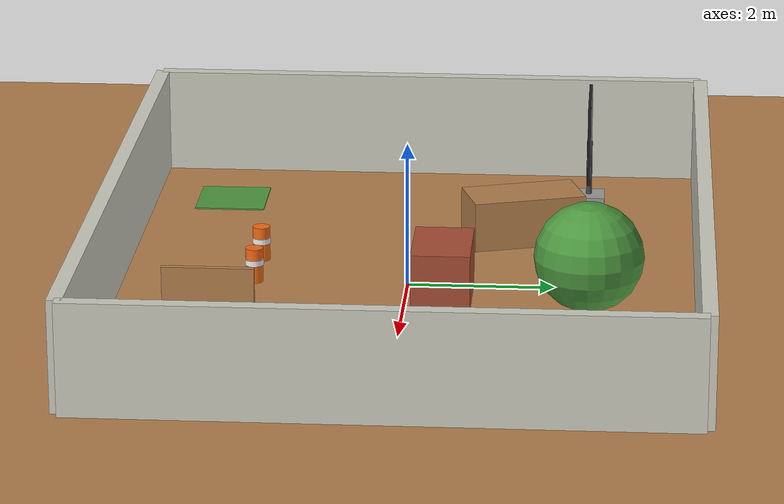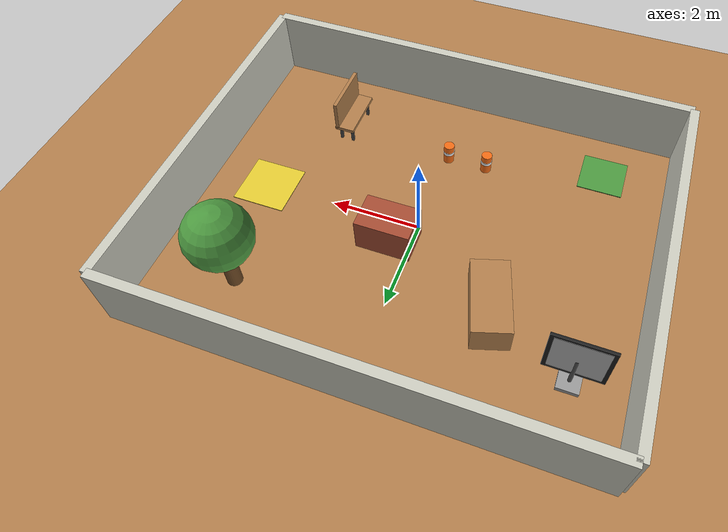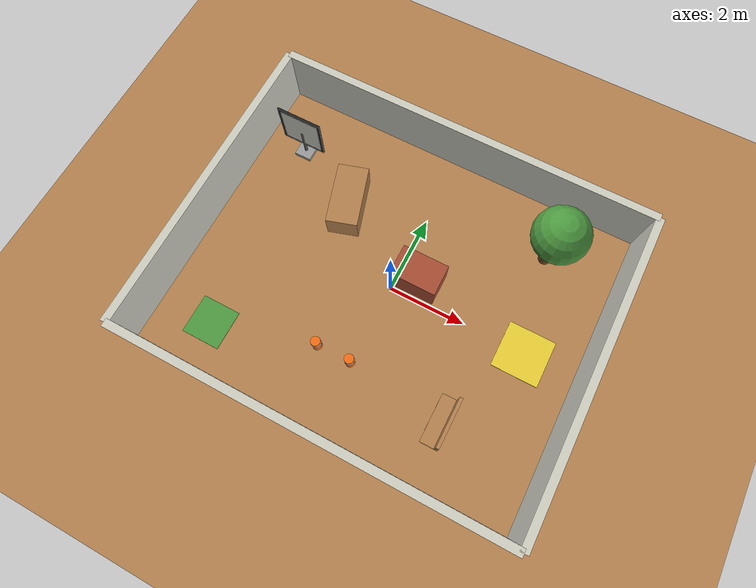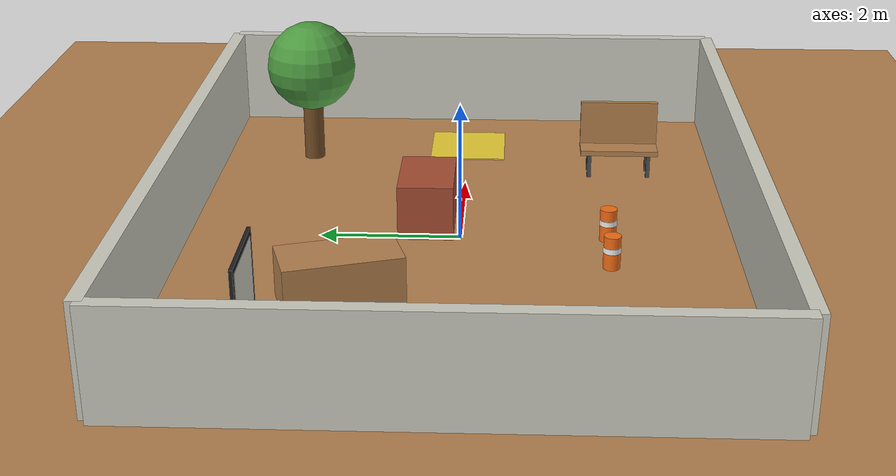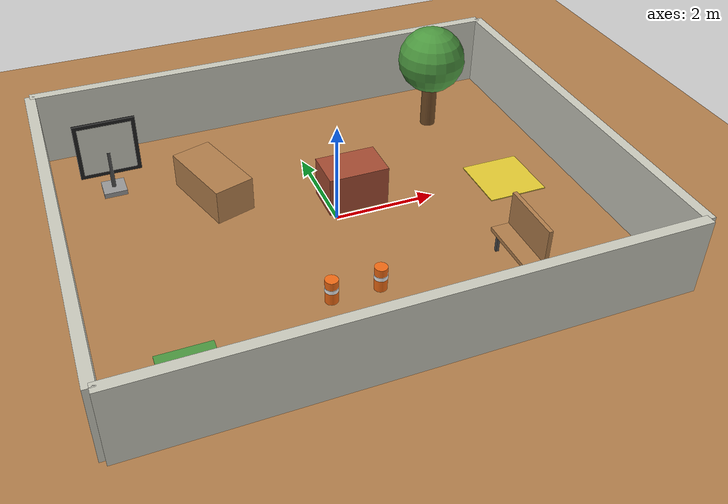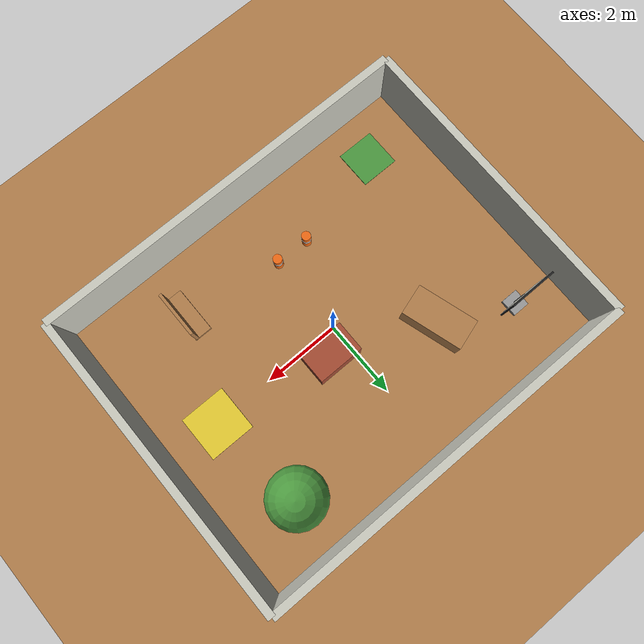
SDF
<?xml version="1.0" ?>
<sdf version="1.6">
  <world name="indoor_vln">
    <include>
      <uri>model://sun</uri>
    </include>

    <physics type="ode">
      <max_step_size>0.001</max_step_size>
      <real_time_update_rate>1000</real_time_update_rate>
    </physics>

    <scene>
      <ambient>0.56 0.56 0.56 1</ambient>
      <background>0.74 0.84 0.96 1</background>
      <shadows>true</shadows>
      <sky>
        <clouds>
          <speed>7</speed>
        </clouds>
      </sky>
      <fog>
        <color>0.86 0.90 0.96 1</color>
        <type>linear</type>
        <start>18</start>
        <end>55</end>
      </fog>
    </scene>

    <light name="atrium_fill" type="point">
      <pose>0 0 6 0 0 0</pose>
      <diffuse>0.95 0.92 0.88 1</diffuse>
      <specular>0.20 0.20 0.20 1</specular>
      <attenuation>
        <range>30</range>
        <constant>0.6</constant>
        <linear>0.02</linear>
        <quadratic>0.002</quadratic>
      </attenuation>
      <cast_shadows>false</cast_shadows>
    </light>

    <model name="wood_floor">
      <static>true</static>
      <pose>0 0 0 0 0 0</pose>
      <link name="link">
        <collision name="collision">
          <geometry>
            <plane><normal>0 0 1</normal><size>20 20</size></plane>
          </geometry>
        </collision>
        <visual name="visual">
          <geometry>
            <plane><normal>0 0 1</normal><size>20 20</size></plane>
          </geometry>
          <material>
            <script>
              <uri>file://media/materials/scripts/gazebo.material</uri>
              <name>Gazebo/WoodFloor</name>
            </script>
          </material>
        </visual>
      </link>
    </model>

    <model name="north_wall">
      <static>true</static>
      <pose>0 4 0.75 0 0 0</pose>
      <link name="link">
        <collision name="collision">
          <geometry>
            <box><size>10 0.2 1.5</size></box>
          </geometry>
        </collision>
        <visual name="visual">
          <geometry>
            <box><size>10 0.2 1.5</size></box>
          </geometry>
          <material>
            <script>
              <uri>file://media/materials/scripts/gazebo.material</uri>
              <name>Gazebo/PaintedWall</name>
            </script>
          </material>
        </visual>
      </link>
    </model>

    <model name="south_wall">
      <static>true</static>
      <pose>0 -4 0.75 0 0 0</pose>
      <link name="link">
        <collision name="collision">
          <geometry>
            <box><size>10 0.2 1.5</size></box>
          </geometry>
        </collision>
        <visual name="visual">
          <geometry>
            <box><size>10 0.2 1.5</size></box>
          </geometry>
          <material>
            <script>
              <uri>file://media/materials/scripts/gazebo.material</uri>
              <name>Gazebo/PaintedWall</name>
            </script>
          </material>
        </visual>
      </link>
    </model>

    <model name="east_wall">
      <static>true</static>
      <pose>5 0 0.75 0 0 0</pose>
      <link name="link">
        <collision name="collision">
          <geometry>
            <box><size>0.2 8 1.5</size></box>
          </geometry>
        </collision>
        <visual name="visual">
          <geometry>
            <box><size>0.2 8 1.5</size></box>
          </geometry>
          <material>
            <script>
              <uri>file://media/materials/scripts/gazebo.material</uri>
              <name>Gazebo/PaintedWall</name>
            </script>
          </material>
        </visual>
      </link>
    </model>

    <model name="west_wall">
      <static>true</static>
      <pose>-5 0 0.75 0 0 0</pose>
      <link name="link">
        <collision name="collision">
          <geometry>
            <box><size>0.2 8 1.5</size></box>
          </geometry>
        </collision>
        <visual name="visual">
          <geometry>
            <box><size>0.2 8 1.5</size></box>
          </geometry>
          <material>
            <script>
              <uri>file://media/materials/scripts/gazebo.material</uri>
              <name>Gazebo/PaintedWall</name>
            </script>
          </material>
        </visual>
      </link>
    </model>

    <model name="central_obstacle">
      <static>true</static>
      <pose>0.5 0.5 0.4 0 0 0</pose>
      <link name="link">
        <collision name="collision">
          <geometry>
            <box><size>1.2 0.8 0.8</size></box>
          </geometry>
        </collision>
        <visual name="visual">
          <geometry>
            <box><size>1.2 0.8 0.8</size></box>
          </geometry>
          <material>
            <script>
              <uri>file://media/materials/scripts/gazebo.material</uri>
              <name>Gazebo/Bricks</name>
            </script>
          </material>
        </visual>
      </link>
    </model>

    <model name="side_obstacle">
      <static>true</static>
      <pose>-2.0 1.5 0.35 0 0 0.3</pose>
      <link name="link">
        <collision name="collision">
          <geometry>
            <box><size>0.8 1.6 0.7</size></box>
          </geometry>
        </collision>
        <visual name="visual">
          <geometry>
            <box><size>0.8 1.6 0.7</size></box>
          </geometry>
          <material>
            <script>
              <uri>file://media/materials/scripts/gazebo.material</uri>
              <name>Gazebo/WoodPallet</name>
            </script>
          </material>
        </visual>
      </link>
    </model>

    <model name="entry_pad">
      <static>true</static>
      <pose>-3.5 -2.8 0.01 0 0 0</pose>
      <link name="link">
        <collision name="collision">
          <geometry>
            <box><size>1.0 1.0 0.02</size></box>
          </geometry>
        </collision>
        <visual name="visual">
          <geometry>
            <box><size>1.0 1.0 0.02</size></box>
          </geometry>
          <material>
            <script>
              <uri>file://media/materials/scripts/gazebo.material</uri>
              <name>Gazebo/Grass</name>
            </script>
          </material>
        </visual>
      </link>
    </model>

    <model name="bench_target">
      <static>true</static>
      <pose>2.5 -2.4 0 0 0 1.57</pose>
      <link name="link">
        <collision name="seat_collision">
          <pose>0 0 0.42 0 0 0</pose>
          <geometry>
            <box><size>1.2 0.45 0.08</size></box>
          </geometry>
        </collision>
        <collision name="back_collision">
          <pose>0 -0.17 0.78 0 0 0</pose>
          <geometry>
            <box><size>1.2 0.08 0.72</size></box>
          </geometry>
        </collision>
        <visual name="seat_visual">
          <pose>0 0 0.42 0 0 0</pose>
          <geometry>
            <box><size>1.2 0.45 0.08</size></box>
          </geometry>
          <material>
            <script>
              <uri>file://media/materials/scripts/gazebo.material</uri>
              <name>Gazebo/Wood</name>
            </script>
          </material>
        </visual>
        <visual name="back_visual">
          <pose>0 -0.17 0.78 0 0 0</pose>
          <geometry>
            <box><size>1.2 0.08 0.72</size></box>
          </geometry>
          <material>
            <script>
              <uri>file://media/materials/scripts/gazebo.material</uri>
              <name>Gazebo/Wood</name>
            </script>
          </material>
        </visual>
        <visual name="leg_fl">
          <pose>0.46 0.14 0.20 0 0 0</pose>
          <geometry>
            <box><size>0.06 0.06 0.40</size></box>
          </geometry>
          <material>
            <script>
              <uri>file://media/materials/scripts/gazebo.material</uri>
              <name>Gazebo/DarkGrey</name>
            </script>
          </material>
        </visual>
        <visual name="leg_fr">
          <pose>0.46 -0.14 0.20 0 0 0</pose>
          <geometry>
            <box><size>0.06 0.06 0.40</size></box>
          </geometry>
          <material>
            <script>
              <uri>file://media/materials/scripts/gazebo.material</uri>
              <name>Gazebo/DarkGrey</name>
            </script>
          </material>
        </visual>
        <visual name="leg_rl">
          <pose>-0.46 0.14 0.20 0 0 0</pose>
          <geometry>
            <box><size>0.06 0.06 0.40</size></box>
          </geometry>
          <material>
            <script>
              <uri>file://media/materials/scripts/gazebo.material</uri>
              <name>Gazebo/DarkGrey</name>
            </script>
          </material>
        </visual>
        <visual name="leg_rr">
          <pose>-0.46 -0.14 0.20 0 0 0</pose>
          <geometry>
            <box><size>0.06 0.06 0.40</size></box>
          </geometry>
          <material>
            <script>
              <uri>file://media/materials/scripts/gazebo.material</uri>
              <name>Gazebo/DarkGrey</name>
            </script>
          </material>
        </visual>
      </link>
    </model>

    <model name="tree_target">
      <static>true</static>
      <pose>3.1 2.5 0 0 0 0</pose>
      <link name="link">
        <collision name="trunk_collision">
          <pose>0 0 0.55 0 0 0</pose>
          <geometry>
            <cylinder><radius>0.16</radius><length>1.1</length></cylinder>
          </geometry>
        </collision>
        <collision name="canopy_collision">
          <pose>0 0 1.55 0 0 0</pose>
          <geometry>
            <sphere><radius>0.7</radius></sphere>
          </geometry>
        </collision>
        <visual name="trunk_visual">
          <pose>0 0 0.55 0 0 0</pose>
          <geometry>
            <cylinder><radius>0.16</radius><length>1.1</length></cylinder>
          </geometry>
          <material>
            <script>
              <uri>file://media/materials/scripts/gazebo.material</uri>
              <name>Gazebo/Trunk</name>
            </script>
          </material>
        </visual>
        <visual name="canopy_visual">
          <pose>0 0 1.55 0 0 0</pose>
          <geometry>
            <sphere><radius>0.7</radius></sphere>
          </geometry>
          <material>
            <script>
              <uri>file://media/materials/scripts/gazebo.material</uri>
              <name>Gazebo/Grass</name>
            </script>
          </material>
        </visual>
      </link>
    </model>

    <model name="cone_gate_left">
      <static>true</static>
      <pose>-0.9 -2.1 0 0 0 0</pose>
      <link name="link">
        <collision name="collision">
          <pose>0 0 0.24 0 0 0</pose>
          <geometry>
            <cylinder><radius>0.12</radius><length>0.48</length></cylinder>
          </geometry>
        </collision>
        <visual name="visual">
          <pose>0 0 0.24 0 0 0</pose>
          <geometry>
            <cylinder><radius>0.12</radius><length>0.48</length></cylinder>
          </geometry>
          <material><ambient>0.95 0.42 0.08 1</ambient></material>
        </visual>
        <visual name="stripe">
          <pose>0 0 0.28 0 0 0</pose>
          <geometry>
            <cylinder><radius>0.125</radius><length>0.08</length></cylinder>
          </geometry>
          <material><ambient>0.95 0.95 0.95 1</ambient></material>
        </visual>
      </link>
    </model>

    <model name="cone_gate_right">
      <static>true</static>
      <pose>0.0 -2.1 0 0 0 0</pose>
      <link name="link">
        <collision name="collision">
          <pose>0 0 0.24 0 0 0</pose>
          <geometry>
            <cylinder><radius>0.12</radius><length>0.48</length></cylinder>
          </geometry>
        </collision>
        <visual name="visual">
          <pose>0 0 0.24 0 0 0</pose>
          <geometry>
            <cylinder><radius>0.12</radius><length>0.48</length></cylinder>
          </geometry>
          <material><ambient>0.95 0.42 0.08 1</ambient></material>
        </visual>
        <visual name="stripe">
          <pose>0 0 0.28 0 0 0</pose>
          <geometry>
            <cylinder><radius>0.125</radius><length>0.08</length></cylinder>
          </geometry>
          <material><ambient>0.95 0.95 0.95 1</ambient></material>
        </visual>
      </link>
    </model>

    <include>
      <uri>model://vln_aruco_board</uri>
      <pose>-3.8 2.4 0 0 0 1.57</pose>
    </include>

    <model name="finish_zone">
      <static>true</static>
      <pose>3.6 0 0.01 0 0 0</pose>
      <link name="link">
        <collision name="collision">
          <geometry>
            <box><size>1.2 1.2 0.02</size></box>
          </geometry>
        </collision>
        <visual name="visual">
          <geometry>
            <box><size>1.2 1.2 0.02</size></box>
          </geometry>
          <material>
            <script>
              <uri>file://media/materials/scripts/gazebo.material</uri>
              <name>Gazebo/ZincYellow</name>
            </script>
          </material>
        </visual>
      </link>
    </model>
  </world>
</sdf>

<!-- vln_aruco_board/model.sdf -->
<sdf version="1.6">
  <model name="vln_aruco_board">
    <static>true</static>
    <link name="board_link">
      <collision name="board_collision">
        <pose>0 0 1.0 0 0 0</pose>
        <geometry>
          <box>
            <size>0.04 1.1 1.1</size>
          </box>
        </geometry>
      </collision>

      <visual name="board_frame">
        <pose>0 0 1.0 0 0 0</pose>
        <geometry>
          <box>
            <size>0.045 1.18 1.18</size>
          </box>
        </geometry>
        <material>
          <script>
            <uri>file://media/materials/scripts/gazebo.material</uri>
            <name>Gazebo/FlatBlack</name>
          </script>
        </material>
      </visual>

      <visual name="board_face">
        <pose>0.023 0 1.0 0 0 0</pose>
        <geometry>
          <box>
            <size>0.006 1.02 1.02</size>
          </box>
        </geometry>
        <material>
          <script>
            <uri>model://vln_aruco_board/materials/scripts</uri>
            <uri>model://vln_aruco_board/materials/textures</uri>
            <name>VLN/ArucoBoard</name>
          </script>
        </material>
      </visual>

      <visual name="board_back">
        <pose>-0.023 0 1.0 0 0 0</pose>
        <geometry>
          <box>
            <size>0.006 1.02 1.02</size>
          </box>
        </geometry>
        <material>
          <script>
            <uri>file://media/materials/scripts/gazebo.material</uri>
            <name>Gazebo/PaintedWall</name>
          </script>
        </material>
      </visual>

      <visual name="support_post">
        <pose>0 0 0.45 0 0 0</pose>
        <geometry>
          <cylinder>
            <radius>0.04</radius>
            <length>0.9</length>
          </cylinder>
        </geometry>
        <material>
          <script>
            <uri>file://media/materials/scripts/gazebo.material</uri>
            <name>Gazebo/DarkGrey</name>
          </script>
        </material>
      </visual>

      <visual name="support_base">
        <pose>0 0 0.05 0 0 0</pose>
        <geometry>
          <box>
            <size>0.45 0.45 0.10</size>
          </box>
        </geometry>
        <material>
          <script>
            <uri>file://media/materials/scripts/gazebo.material</uri>
            <name>Gazebo/Grey</name>
          </script>
        </material>
      </visual>
    </link>
  </model>
</sdf>
